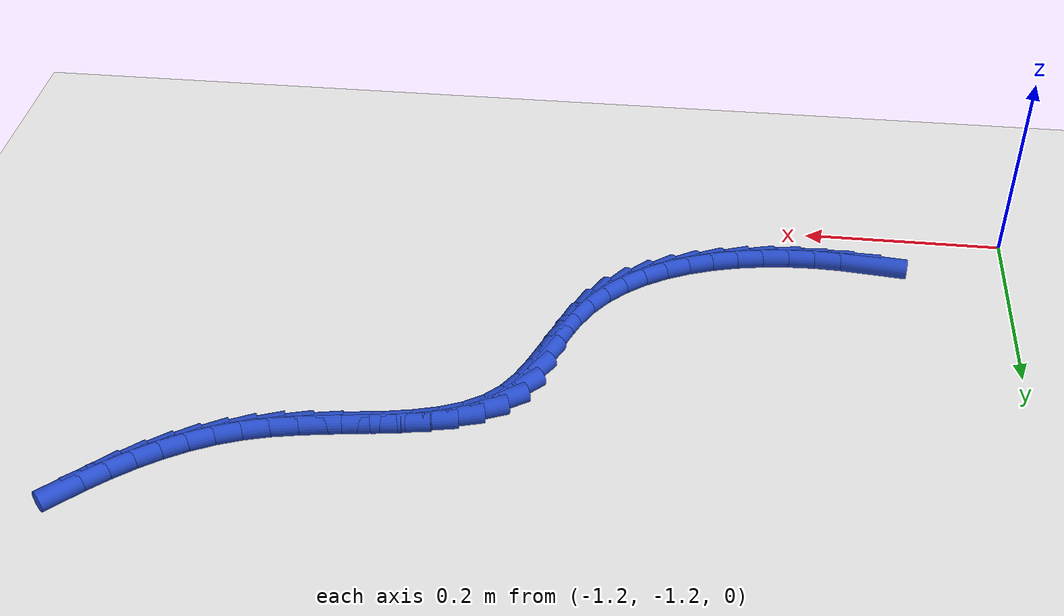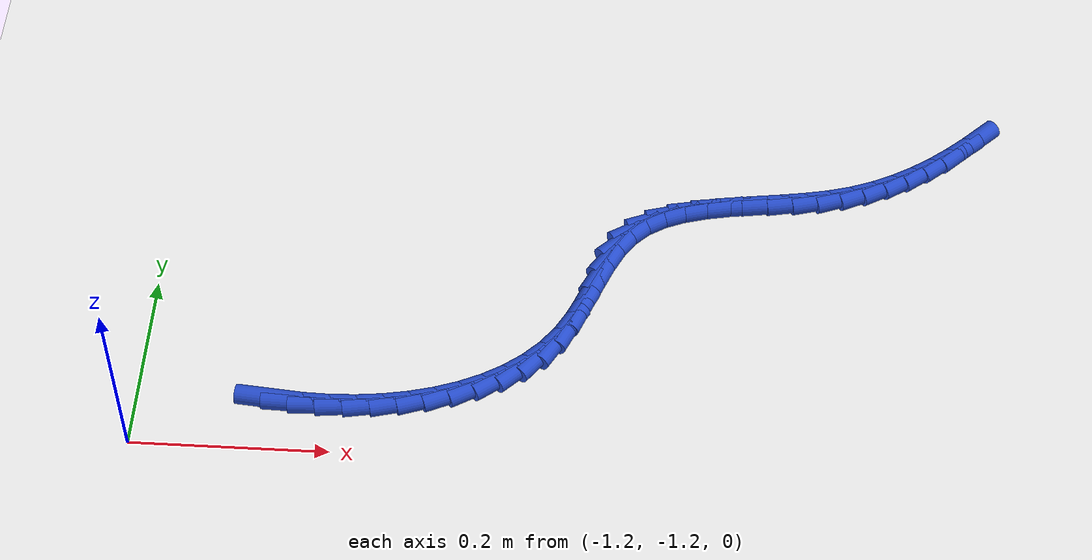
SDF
<sdf version="1.6">
 <world name="default">
  <model name="ground_plane">
   <static>1</static>
   <link name="link">
    <collision name="collision">
     <geometry><plane><normal>0 0 1</normal><size>100 100</size></plane></geometry>
     <surface><friction><ode><mu>100</mu><mu2>50</mu2></ode></friction></surface>
    </collision>
    <visual name="visual">
     <cast_shadows>0</cast_shadows>
     <geometry><plane><normal>0 0 1</normal><size>100 100</size></plane></geometry>
     <material>
      <script><uri>file://media/materials/scripts/gazebo.material</uri><name>Gazebo/WhiteGlow</name></script>
     </material>
    </visual>
   </link>
  </model>
  <model name="line">
   <link name="link_210">
    <pose>-1.0596711702168349 -1.1457597856230504 0.01 0 1.57 -0.09759197604210891</pose>
    <collision name="collision">
     <geometry><cylinder><radius>0.01</radius><length>0.08</length></cylinder></geometry>
    </collision>
    <visual name="visual">
     <material>
      <script><name>Gazebo/Blue</name><uri>file://media/materials/scripts/gazebo.material</uri></script>
     </material>
     <geometry><cylinder><radius>0.01</radius><length>0.08</length></cylinder></geometry>
    </visual>
   </link>
   <link name="link_211">
    <pose>-1.033337918458037 -1.1483378896869945 0.01 0 1.57 -0.03321248857718165</pose>
    <collision name="collision">
     <geometry><cylinder><radius>0.01</radius><length>0.08</length></cylinder></geometry>
    </collision>
    <visual name="visual">
     <material>
      <script><name>Gazebo/Blue</name><uri>file://media/materials/scripts/gazebo.material</uri></script>
     </material>
     <geometry><cylinder><radius>0.01</radius><length>0.08</length></cylinder></geometry>
    </visual>
   </link>
   <link name="link_212">
    <pose>-1.0066205835128197 -1.149225565281941 0.01 0 1.57 0.03231169950887406</pose>
    <collision name="collision">
     <geometry><cylinder><radius>0.01</radius><length>0.08</length></cylinder></geometry>
    </collision>
    <visual name="visual">
     <material>
      <script><name>Gazebo/Blue</name><uri>file://media/materials/scripts/gazebo.material</uri></script>
     </material>
     <geometry><cylinder><radius>0.01</radius><length>0.08</length></cylinder></geometry>
    </visual>
   </link>
   <link name="link_213">
    <pose>-0.9798068815556129 -1.1483588673564373 0.01 0 1.57 0.10051582573840526</pose>
    <collision name="collision">
     <geometry><cylinder><radius>0.01</radius><length>0.08</length></cylinder></geometry>
    </collision>
    <visual name="visual">
     <material>
      <script><name>Gazebo/Blue</name><uri>file://media/materials/scripts/gazebo.material</uri></script>
     </material>
     <geometry><cylinder><radius>0.01</radius><length>0.08</length></cylinder></geometry>
    </visual>
   </link>
   <link name="link_214">
    <pose>-0.9531845287608453 -1.1456738508590296 0.01 0 1.57 0.1729563404298205</pose>
    <collision name="collision">
     <geometry><cylinder><radius>0.01</radius><length>0.08</length></cylinder></geometry>
    </collision>
    <visual name="visual">
     <material>
      <script><name>Gazebo/Blue</name><uri>file://media/materials/scripts/gazebo.material</uri></script>
     </material>
     <geometry><cylinder><radius>0.01</radius><length>0.08</length></cylinder></geometry>
    </visual>
   </link>
   <link name="link_215">
    <pose>-0.9270412413029457 -1.1411065707382646 0.01 0 1.57 0.2512501259195284</pose>
    <collision name="collision">
     <geometry><cylinder><radius>0.01</radius><length>0.08</length></cylinder></geometry>
    </collision>
    <visual name="visual">
     <material>
      <script><name>Gazebo/Blue</name><uri>file://media/materials/scripts/gazebo.material</uri></script>
     </material>
     <geometry><cylinder><radius>0.01</radius><length>0.08</length></cylinder></geometry>
    </visual>
   </link>
   <link name="link_216">
    <pose>-0.9016647353563436 -1.1345930819426882 0.01 0 1.57 0.33707546089964013</pose>
    <collision name="collision">
     <geometry><cylinder><radius>0.01</radius><length>0.08</length></cylinder></geometry>
    </collision>
    <visual name="visual">
     <material>
      <script><name>Gazebo/Blue</name><uri>file://media/materials/scripts/gazebo.material</uri></script>
     </material>
     <geometry><cylinder><radius>0.01</radius><length>0.08</length></cylinder></geometry>
    </visual>
   </link>
   <link name="link_217">
    <pose>-0.8773427270954668 -1.1260694394208468 0.01 0 1.57 0.4321093421960103</pose>
    <collision name="collision">
     <geometry><cylinder><radius>0.01</radius><length>0.08</length></cylinder></geometry>
    </collision>
    <visual name="visual">
     <material>
      <script><name>Gazebo/Blue</name><uri>file://media/materials/scripts/gazebo.material</uri></script>
     </material>
     <geometry><cylinder><radius>0.01</radius><length>0.08</length></cylinder></geometry>
    </visual>
   </link>
   <link name="link_218">
    <pose>-0.8543629326947461 -1.1154716981212878 0.01 0 1.57 0.5378624145676009</pose>
    <collision name="collision">
     <geometry><cylinder><radius>0.01</radius><length>0.08</length></cylinder></geometry>
    </collision>
    <visual name="visual">
     <material>
      <script><name>Gazebo/Blue</name><uri>file://media/materials/scripts/gazebo.material</uri></script>
     </material>
     <geometry><cylinder><radius>0.01</radius><length>0.08</length></cylinder></geometry>
    </visual>
   </link>
   <link name="link_219">
    <pose>-0.8330130683286099 -1.1027359129925574 0.01 0 1.57 0.6553694556899805</pose>
    <collision name="collision">
     <geometry><cylinder><radius>0.01</radius><length>0.08</length></cylinder></geometry>
    </collision>
    <visual name="visual">
     <material>
      <script><name>Gazebo/Blue</name><uri>file://media/materials/scripts/gazebo.material</uri></script>
     </material>
     <geometry><cylinder><radius>0.01</radius><length>0.08</length></cylinder></geometry>
    </visual>
   </link>
   <link name="link_220">
    <pose>-0.8135808501714872 -1.0877981389832023 0.01 0 1.57 0.7847258587279508</pose>
    <collision name="collision">
     <geometry><cylinder><radius>0.01</radius><length>0.08</length></cylinder></geometry>
    </collision>
    <visual name="visual">
     <material>
      <script><name>Gazebo/Blue</name><uri>file://media/materials/scripts/gazebo.material</uri></script>
     </material>
     <geometry><cylinder><radius>0.01</radius><length>0.08</length></cylinder></geometry>
    </visual>
   </link>
   <link name="link_221">
    <pose>-0.796353994397807 -1.0705944310417688 0.01 0 1.57 0.924562186578114</pose>
    <collision name="collision">
     <geometry><cylinder><radius>0.01</radius><length>0.08</length></cylinder></geometry>
    </collision>
    <visual name="visual">
     <material>
      <script><name>Gazebo/Blue</name><uri>file://media/materials/scripts/gazebo.material</uri></script>
     </material>
     <geometry><cylinder><radius>0.01</radius><length>0.08</length></cylinder></geometry>
    </visual>
   </link>
   <link name="link_222">
    <pose>-0.7816202171819979 -1.0510608441168028 0.01 0 1.57 1.0641916699867153</pose>
    <collision name="collision">
     <geometry><cylinder><radius>0.01</radius><length>0.08</length></cylinder></geometry>
    </collision>
    <visual name="visual">
     <material>
      <script><name>Gazebo/Blue</name><uri>file://media/materials/scripts/gazebo.material</uri></script>
     </material>
     <geometry><cylinder><radius>0.01</radius><length>0.08</length></cylinder></geometry>
    </visual>
   </link>
   <link name="link_223">
    <pose>-0.769521625739141 -1.0292580235709854 0.01 0 1.57 1.159392760834636</pose>
    <collision name="collision">
     <geometry><cylinder><radius>0.01</radius><length>0.08</length></cylinder></geometry>
    </collision>
    <visual name="visual">
     <material>
      <script><name>Gazebo/Blue</name><uri>file://media/materials/scripts/gazebo.material</uri></script>
     </material>
     <geometry><cylinder><radius>0.01</radius><length>0.08</length></cylinder></geometry>
    </visual>
   </link>
   <link name="link_224">
    <pose>-0.7593593721445866 -1.0059661786564387 0.01 0 1.57 1.200174017805222</pose>
    <collision name="collision">
     <geometry><cylinder><radius>0.01</radius><length>0.08</length></cylinder></geometry>
    </collision>
    <visual name="visual">
     <material>
      <script><name>Gazebo/Blue</name><uri>file://media/materials/scripts/gazebo.material</uri></script>
     </material>
     <geometry><cylinder><radius>0.01</radius><length>0.08</length></cylinder></geometry>
    </visual>
   </link>
   <link name="link_225">
    <pose>-0.750133371193763 -0.9822232725274223 0.01 0 1.57 1.1892499158069918</pose>
    <collision name="collision">
     <geometry><cylinder><radius>0.01</radius><length>0.08</length></cylinder></geometry>
    </collision>
    <visual name="visual">
     <material>
      <script><name>Gazebo/Blue</name><uri>file://media/materials/scripts/gazebo.material</uri></script>
     </material>
     <geometry><cylinder><radius>0.01</radius><length>0.08</length></cylinder></geometry>
    </visual>
   </link>
   <link name="link_226">
    <pose>-0.740843153466438 -0.9590675970926071 0.01 0 1.57 1.122505401825445</pose>
    <collision name="collision">
     <geometry><cylinder><radius>0.01</radius><length>0.08</length></cylinder></geometry>
    </collision>
    <visual name="visual">
     <material>
      <script><name>Gazebo/Blue</name><uri>file://media/materials/scripts/gazebo.material</uri></script>
     </material>
     <geometry><cylinder><radius>0.01</radius><length>0.08</length></cylinder></geometry>
    </visual>
   </link>
   <link name="link_227">
    <pose>-0.7304882495423818 -0.9375374442606679 0.01 0 1.57 0.9885955127888895</pose>
    <collision name="collision">
     <geometry><cylinder><radius>0.01</radius><length>0.08</length></cylinder></geometry>
    </collision>
    <visual name="visual">
     <material>
      <script><name>Gazebo/Blue</name><uri>file://media/materials/scripts/gazebo.material</uri></script>
     </material>
     <geometry><cylinder><radius>0.01</radius><length>0.08</length></cylinder></geometry>
    </visual>
   </link>
   <link name="link_228">
    <pose>-0.7180681900013622 -0.9186711059402759 0.01 0 1.57 0.7794863244534996</pose>
    <collision name="collision">
     <geometry><cylinder><radius>0.01</radius><length>0.08</length></cylinder></geometry>
    </collision>
    <visual name="visual">
     <material>
      <script><name>Gazebo/Blue</name><uri>file://media/materials/scripts/gazebo.material</uri></script>
     </material>
     <geometry><cylinder><radius>0.01</radius><length>0.08</length></cylinder></geometry>
    </visual>
   </link>
   <link name="link_229">
    <pose>-0.7026484546698643 -0.9034326191915651 0.01 0 1.57 0.5601574214040627</pose>
    <collision name="collision">
     <geometry><cylinder><radius>0.01</radius><length>0.08</length></cylinder></geometry>
    </collision>
    <visual name="visual">
     <material>
      <script><name>Gazebo/Blue</name><uri>file://media/materials/scripts/gazebo.material</uri></script>
     </material>
     <geometry><cylinder><radius>0.01</radius><length>0.08</length></cylinder></geometry>
    </visual>
   </link>
   <link name="link_230">
    <pose>-0.6841453464181139 -0.8918280459742289 0.01 0 1.57 0.38863696929023156</pose>
    <collision name="collision">
     <geometry><cylinder><radius>0.01</radius><length>0.08</length></cylinder></geometry>
    </collision>
    <visual name="visual">
     <material>
      <script><name>Gazebo/Blue</name><uri>file://media/materials/scripts/gazebo.material</uri></script>
     </material>
     <geometry><cylinder><radius>0.01</radius><length>0.08</length></cylinder></geometry>
    </visual>
   </link>
   <link name="link_231">
    <pose>-0.6630668875071608 -0.8831972081325512 0.01 0 1.57 0.2671186542138036</pose>
    <collision name="collision">
     <geometry><cylinder><radius>0.01</radius><length>0.08</length></cylinder></geometry>
    </collision>
    <visual name="visual">
     <material>
      <script><name>Gazebo/Blue</name><uri>file://media/materials/scripts/gazebo.material</uri></script>
     </material>
     <geometry><cylinder><radius>0.01</radius><length>0.08</length></cylinder></geometry>
    </visual>
   </link>
   <link name="link_232">
    <pose>-0.639933076580391 -0.8768664428312947 0.01 0 1.57 0.18843535660241906</pose>
    <collision name="collision">
     <geometry><cylinder><radius>0.01</radius><length>0.08</length></cylinder></geometry>
    </collision>
    <visual name="visual">
     <material>
      <script><name>Gazebo/Blue</name><uri>file://media/materials/scripts/gazebo.material</uri></script>
     </material>
     <geometry><cylinder><radius>0.01</radius><length>0.08</length></cylinder></geometry>
    </visual>
   </link>
   <link name="link_233">
    <pose>-0.6152639122811917 -0.8721620872352239 0.01 0 1.57 0.14503931225609532</pose>
    <collision name="collision">
     <geometry><cylinder><radius>0.01</radius><length>0.08</length></cylinder></geometry>
    </collision>
    <visual name="visual">
     <material>
      <script><name>Gazebo/Blue</name><uri>file://media/materials/scripts/gazebo.material</uri></script>
     </material>
     <geometry><cylinder><radius>0.01</radius><length>0.08</length></cylinder></geometry>
    </visual>
   </link>
   <link name="link_234">
    <pose>-0.5895793932529484 -0.8684104785091027 0.01 0 1.57 0.13187122588585606</pose>
    <collision name="collision">
     <geometry><cylinder><radius>0.01</radius><length>0.08</length></cylinder></geometry>
    </collision>
    <visual name="visual">
     <material>
      <script><name>Gazebo/Blue</name><uri>file://media/materials/scripts/gazebo.material</uri></script>
     </material>
     <geometry><cylinder><radius>0.01</radius><length>0.08</length></cylinder></geometry>
    </visual>
   </link>
   <link name="link_235">
    <pose>-0.5633995181390492 -0.8649379538176947 0.01 0 1.57 0.14678855683274505</pose>
    <collision name="collision">
     <geometry><cylinder><radius>0.01</radius><length>0.08</length></cylinder></geometry>
    </collision>
    <visual name="visual">
     <material>
      <script><name>Gazebo/Blue</name><uri>file://media/materials/scripts/gazebo.material</uri></script>
     </material>
     <geometry><cylinder><radius>0.01</radius><length>0.08</length></cylinder></geometry>
    </visual>
   </link>
   <link name="link_236">
    <pose>-0.5372442855828802 -0.8610708503257644 0.01 0 1.57 0.19037351088910837</pose>
    <collision name="collision">
     <geometry><cylinder><radius>0.01</radius><length>0.08</length></cylinder></geometry>
    </collision>
    <visual name="visual">
     <material>
      <script><name>Gazebo/Blue</name><uri>file://media/materials/scripts/gazebo.material</uri></script>
     </material>
     <geometry><cylinder><radius>0.01</radius><length>0.08</length></cylinder></geometry>
    </visual>
   </link>
   <link name="link_237">
    <pose>-0.5116336942278278 -0.8561355051980748 0.01 0 1.57 0.26491762435732247</pose>
    <collision name="collision">
     <geometry><cylinder><radius>0.01</radius><length>0.08</length></cylinder></geometry>
    </collision>
    <visual name="visual">
     <material>
      <script><name>Gazebo/Blue</name><uri>file://media/materials/scripts/gazebo.material</uri></script>
     </material>
     <geometry><cylinder><radius>0.01</radius><length>0.08</length></cylinder></geometry>
    </visual>
   </link>
   <link name="link_238">
    <pose>-0.4870766670376297 -0.8494733282659626 0.01 0 1.57 0.35596577427933607</pose>
    <collision name="collision">
     <geometry><cylinder><radius>0.01</radius><length>0.08</length></cylinder></geometry>
    </collision>
    <visual name="visual">
     <material>
      <script><name>Gazebo/Blue</name><uri>file://media/materials/scripts/gazebo.material</uri></script>
     </material>
     <geometry><cylinder><radius>0.01</radius><length>0.08</length></cylinder></geometry>
    </visual>
   </link>
   <link name="link_239">
    <pose>-0.46379463277173855 -0.8408169743606076 0.01 0 1.57 0.4436760274296654</pose>
    <collision name="collision">
     <geometry><cylinder><radius>0.01</radius><length>0.08</length></cylinder></geometry>
    </collision>
    <visual name="visual">
     <material>
      <script><name>Gazebo/Blue</name><uri>file://media/materials/scripts/gazebo.material</uri></script>
     </material>
     <geometry><cylinder><radius>0.01</radius><length>0.08</length></cylinder></geometry>
    </visual>
   </link>
   <link name="link_240">
    <pose>-0.44170205879401037 -0.8303168358167033 0.01 0 1.57 0.5252649711675176</pose>
    <collision name="collision">
     <geometry><cylinder><radius>0.01</radius><length>0.08</length></cylinder></geometry>
    </collision>
    <visual name="visual">
     <material>
      <script><name>Gazebo/Blue</name><uri>file://media/materials/scripts/gazebo.material</uri></script>
     </material>
     <geometry><cylinder><radius>0.01</radius><length>0.08</length></cylinder></geometry>
    </visual>
   </link>
   <link name="link_241">
    <pose>-0.4206984381102298 -0.818143683267475 0.01 0 1.57 0.5993966297261669</pose>
    <collision name="collision">
     <geometry><cylinder><radius>0.01</radius><length>0.08</length></cylinder></geometry>
    </collision>
    <visual name="visual">
     <material>
      <script><name>Gazebo/Blue</name><uri>file://media/materials/scripts/gazebo.material</uri></script>
     </material>
     <geometry><cylinder><radius>0.01</radius><length>0.08</length></cylinder></geometry>
    </visual>
   </link>
   <link name="link_242">
    <pose>-0.4006832637261813 -0.8044682873461487 0.01 0 1.57 0.6652682560409836</pose>
    <collision name="collision">
     <geometry><cylinder><radius>0.01</radius><length>0.08</length></cylinder></geometry>
    </collision>
    <visual name="visual">
     <material>
      <script><name>Gazebo/Blue</name><uri>file://media/materials/scripts/gazebo.material</uri></script>
     </material>
     <geometry><cylinder><radius>0.01</radius><length>0.08</length></cylinder></geometry>
    </visual>
   </link>
   <link name="link_243">
    <pose>-0.3815560286476488 -0.7894614186859502 0.01 0 1.57 0.7225313237075427</pose>
    <collision name="collision">
     <geometry><cylinder><radius>0.01</radius><length>0.08</length></cylinder></geometry>
    </collision>
    <visual name="visual">
     <material>
      <script><name>Gazebo/Blue</name><uri>file://media/materials/scripts/gazebo.material</uri></script>
     </material>
     <geometry><cylinder><radius>0.01</radius><length>0.08</length></cylinder></geometry>
    </visual>
   </link>
   <link name="link_244">
    <pose>-0.3632162258804183 -0.7732938479201058 0.01 0 1.57 0.77116844856675</pose>
    <collision name="collision">
     <geometry><cylinder><radius>0.01</radius><length>0.08</length></cylinder></geometry>
    </collision>
    <visual name="visual">
     <material>
      <script><name>Gazebo/Blue</name><uri>file://media/materials/scripts/gazebo.material</uri></script>
     </material>
     <geometry><cylinder><radius>0.01</radius><length>0.08</length></cylinder></geometry>
    </visual>
   </link>
  </model>
 </world>
</sdf>
